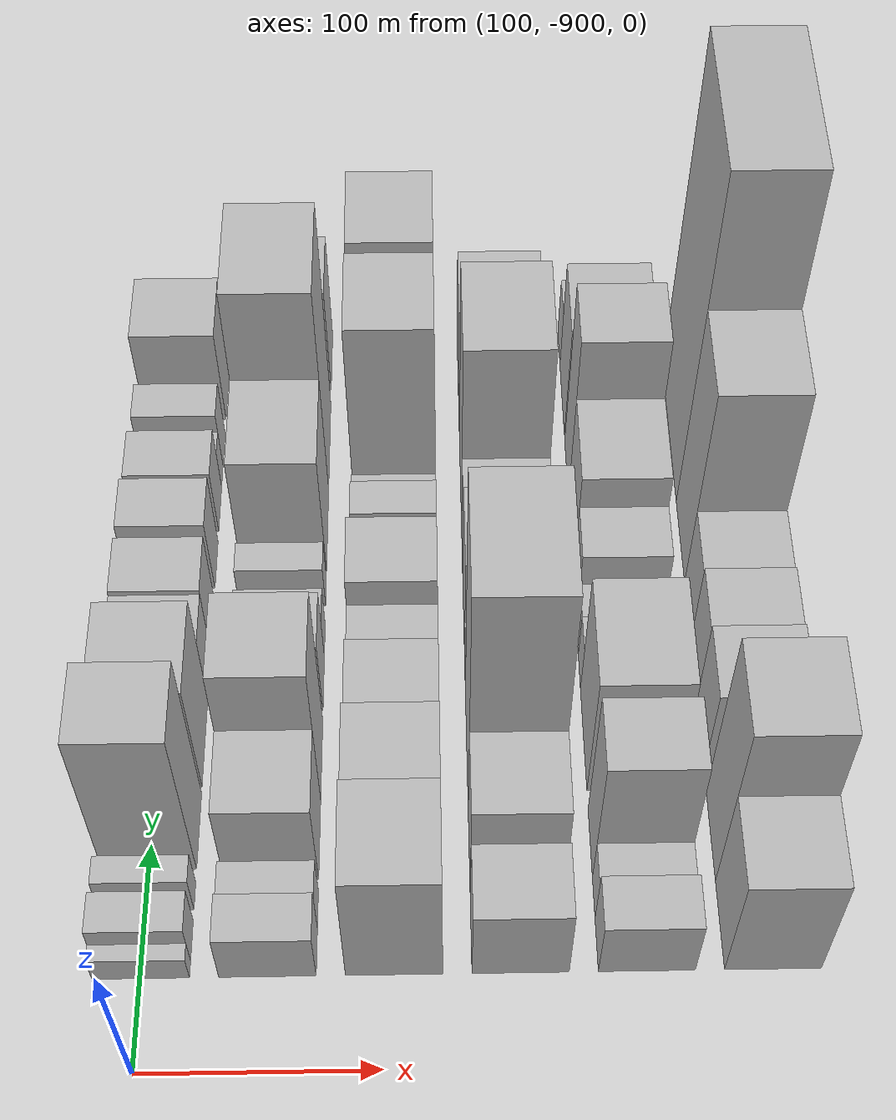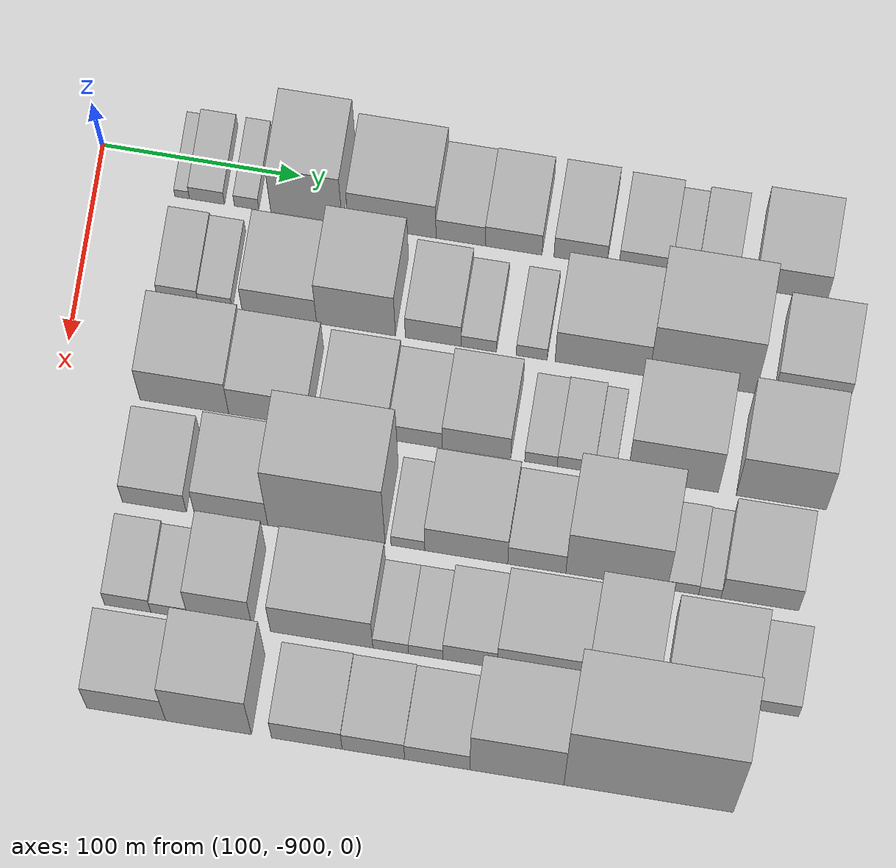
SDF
<sdf version="1.6">
 <world name="default">
  <model name="building_1">
   <static>1</static>
   <pose>100.0000 -856.3155 0 0.000000 0.000000 0.000000</pose>
   <link name="link">
    <pose>0 0 9.00 0 0 0</pose>
    <collision name="collision"><geometry><box><size>40.0000 7.3690 18.0000</size></box></geometry></collision>
    <visual name="visual">
     <cast_shadows>0</cast_shadows>
     <geometry><box><size>40.0000 7.3690 18.0000</size></box></geometry>
     <material>
      <script>
       <uri>model://HANNAS_wall/materials/scripts</uri>
       <uri>model://HANNAS_wall/materials/textures</uri>
       <name>vrc/HANNAS_wall</name>
      </script>
     </material>
    </visual>
   </link>
  </model>
  <model name="building_2">
   <static>1</static>
   <pose>100.0000 -843.7832 0 0.000000 0.000000 0.000000</pose>
   <link name="link">
    <pose>0 0 15.00 0 0 0</pose>
    <collision name="collision"><geometry><box><size>40.0000 17.6955 30.0000</size></box></geometry></collision>
    <visual name="visual">
     <cast_shadows>0</cast_shadows>
     <geometry><box><size>40.0000 17.6955 30.0000</size></box></geometry>
     <material>
      <script>
       <uri>model://HANNAS_wall/materials/scripts</uri>
       <uri>model://HANNAS_wall/materials/textures</uri>
       <name>vrc/HANNAS_wall</name>
      </script>
     </material>
    </visual>
   </link>
  </model>
  <model name="building_3">
   <static>1</static>
   <pose>100.0000 -823.7744 0 0.000000 0.000000 0.000000</pose>
   <link name="link">
    <pose>0 0 13.50 0 0 0</pose>
    <collision name="collision"><geometry><box><size>40.0000 12.3221 27.0000</size></box></geometry></collision>
    <visual name="visual">
     <cast_shadows>0</cast_shadows>
     <geometry><box><size>40.0000 12.3221 27.0000</size></box></geometry>
     <material>
      <script>
       <uri>model://HANNAS_wall/materials/scripts</uri>
       <uri>model://HANNAS_wall/materials/textures</uri>
       <name>vrc/HANNAS_wall</name>
      </script>
     </material>
    </visual>
   </link>
  </model>
  <model name="building_4">
   <static>1</static>
   <pose>100.0000 -793.5515 0 0.000000 0.000000 0.000000</pose>
   <link name="link">
    <pose>0 0 55.50 0 0 0</pose>
    <collision name="collision"><geometry><box><size>40.0000 36.1238 111.0000</size></box></geometry></collision>
    <visual name="visual">
     <cast_shadows>0</cast_shadows>
     <geometry><box><size>40.0000 36.1238 111.0000</size></box></geometry>
     <material>
      <script>
       <uri>model://HANNAS_wall/materials/scripts</uri>
       <uri>model://HANNAS_wall/materials/textures</uri>
       <name>vrc/HANNAS_wall</name>
      </script>
     </material>
    </visual>
   </link>
  </model>
  <model name="building_5">
   <static>1</static>
   <pose>100.0000 -750.3410 0 0.000000 0.000000 0.000000</pose>
   <link name="link">
    <pose>0 0 40.50 0 0 0</pose>
    <collision name="collision"><geometry><box><size>40.0000 44.2971 81.0000</size></box></geometry></collision>
    <visual name="visual">
     <cast_shadows>0</cast_shadows>
     <geometry><box><size>40.0000 44.2971 81.0000</size></box></geometry>
     <material>
      <script>
       <uri>model://HANNAS_wall/materials/scripts</uri>
       <uri>model://HANNAS_wall/materials/textures</uri>
       <name>vrc/HANNAS_wall</name>
      </script>
     </material>
    </visual>
   </link>
  </model>
  <model name="building_6">
   <static>1</static>
   <pose>100.0000 -715.8138 0 0.000000 0.000000 0.000000</pose>
   <link name="link">
    <pose>0 0 24.00 0 0 0</pose>
    <collision name="collision"><geometry><box><size>40.0000 24.7575 48.0000</size></box></geometry></collision>
    <visual name="visual">
     <cast_shadows>0</cast_shadows>
     <geometry><box><size>40.0000 24.7575 48.0000</size></box></geometry>
     <material>
      <script>
       <uri>model://HANNAS_wall/materials/scripts</uri>
       <uri>model://HANNAS_wall/materials/textures</uri>
       <name>vrc/HANNAS_wall</name>
      </script>
     </material>
    </visual>
   </link>
  </model>
  <model name="building_7">
   <static>1</static>
   <pose>100.0000 -689.0976 0 0.000000 0.000000 0.000000</pose>
   <link name="link">
    <pose>0 0 25.50 0 0 0</pose>
    <collision name="collision"><geometry><box><size>40.0000 28.6749 51.0000</size></box></geometry></collision>
    <visual name="visual">
     <cast_shadows>0</cast_shadows>
     <geometry><box><size>40.0000 28.6749 51.0000</size></box></geometry>
     <material>
      <script>
       <uri>model://HANNAS_wall/materials/scripts</uri>
       <uri>model://HANNAS_wall/materials/textures</uri>
       <name>vrc/HANNAS_wall</name>
      </script>
     </material>
    </visual>
   </link>
  </model>
  <model name="building_8">
   <static>1</static>
   <pose>100.0000 -655.4162 0 0.000000 0.000000 0.000000</pose>
   <link name="link">
    <pose>0 0 25.50 0 0 0</pose>
    <collision name="collision"><geometry><box><size>40.0000 26.6878 51.0000</size></box></geometry></collision>
    <visual name="visual">
     <cast_shadows>0</cast_shadows>
     <geometry><box><size>40.0000 26.6878 51.0000</size></box></geometry>
     <material>
      <script>
       <uri>model://HANNAS_wall/materials/scripts</uri>
       <uri>model://HANNAS_wall/materials/textures</uri>
       <name>vrc/HANNAS_wall</name>
      </script>
     </material>
    </visual>
   </link>
  </model>
  <model name="building_9">
   <static>1</static>
   <pose>100.0000 -622.9957 0 0.000000 0.000000 0.000000</pose>
   <link name="link">
    <pose>0 0 22.50 0 0 0</pose>
    <collision name="collision"><geometry><box><size>40.0000 26.1534 45.0000</size></box></geometry></collision>
    <visual name="visual">
     <cast_shadows>0</cast_shadows>
     <geometry><box><size>40.0000 26.1534 45.0000</size></box></geometry>
     <material>
      <script>
       <uri>model://HANNAS_wall/materials/scripts</uri>
       <uri>model://HANNAS_wall/materials/textures</uri>
       <name>vrc/HANNAS_wall</name>
      </script>
     </material>
    </visual>
   </link>
  </model>
  <model name="building_10">
   <static>1</static>
   <pose>100.0000 -603.3954 0 0.000000 0.000000 0.000000</pose>
   <link name="link">
    <pose>0 0 13.50 0 0 0</pose>
    <collision name="collision"><geometry><box><size>40.0000 13.0470 27.0000</size></box></geometry></collision>
    <visual name="visual">
     <cast_shadows>0</cast_shadows>
     <geometry><box><size>40.0000 13.0470 27.0000</size></box></geometry>
     <material>
      <script>
       <uri>model://HANNAS_wall/materials/scripts</uri>
       <uri>model://HANNAS_wall/materials/textures</uri>
       <name>vrc/HANNAS_wall</name>
      </script>
     </material>
    </visual>
   </link>
  </model>
  <model name="building_11">
   <static>1</static>
   <pose>100.0000 -586.8713 0 0.000000 0.000000 0.000000</pose>
   <link name="link">
    <pose>0 0 19.50 0 0 0</pose>
    <collision name="collision"><geometry><box><size>40.0000 20.0013 39.0000</size></box></geometry></collision>
    <visual name="visual">
     <cast_shadows>0</cast_shadows>
     <geometry><box><size>40.0000 20.0013 39.0000</size></box></geometry>
     <material>
      <script>
       <uri>model://HANNAS_wall/materials/scripts</uri>
       <uri>model://HANNAS_wall/materials/textures</uri>
       <name>vrc/HANNAS_wall</name>
      </script>
     </material>
    </visual>
   </link>
  </model>
  <model name="building_12">
   <static>1</static>
   <pose>100.0000 -549.4796 0 0.000000 0.000000 0.000000</pose>
   <link name="link">
    <pose>0 0 31.50 0 0 0</pose>
    <collision name="collision"><geometry><box><size>40.0000 36.7822 63.0000</size></box></geometry></collision>
    <visual name="visual">
     <cast_shadows>0</cast_shadows>
     <geometry><box><size>40.0000 36.7822 63.0000</size></box></geometry>
     <material>
      <script>
       <uri>model://HANNAS_wall/materials/scripts</uri>
       <uri>model://HANNAS_wall/materials/textures</uri>
       <name>vrc/HANNAS_wall</name>
      </script>
     </material>
    </visual>
   </link>
  </model>
  <model name="building_53">
   <static>1</static>
   <pose>152.0000 -849.6962 0 0.000000 0.000000 0.000000</pose>
   <link name="link">
    <pose>0 0 18.00 0 0 0</pose>
    <collision name="collision"><geometry><box><size>40.0000 20.6076 36.0000</size></box></geometry></collision>
    <visual name="visual">
     <cast_shadows>0</cast_shadows>
     <geometry><box><size>40.0000 20.6076 36.0000</size></box></geometry>
     <material>
      <script>
       <uri>model://HANNAS_wall/materials/scripts</uri>
       <uri>model://HANNAS_wall/materials/textures</uri>
       <name>vrc/HANNAS_wall</name>
      </script>
     </material>
    </visual>
   </link>
  </model>
  <model name="building_54">
   <static>1</static>
   <pose>152.0000 -830.8529 0 0.000000 0.000000 0.000000</pose>
   <link name="link">
    <pose>0 0 15.00 0 0 0</pose>
    <collision name="collision"><geometry><box><size>40.0000 17.0790 30.0000</size></box></geometry></collision>
    <visual name="visual">
     <cast_shadows>0</cast_shadows>
     <geometry><box><size>40.0000 17.0790 30.0000</size></box></geometry>
     <material>
      <script>
       <uri>model://HANNAS_wall/materials/scripts</uri>
       <uri>model://HANNAS_wall/materials/textures</uri>
       <name>vrc/HANNAS_wall</name>
      </script>
     </material>
    </visual>
   </link>
  </model>
  <model name="building_55">
   <static>1</static>
   <pose>152.0000 -798.5670 0 0.000000 0.000000 0.000000</pose>
   <link name="link">
    <pose>0 0 31.50 0 0 0</pose>
    <collision name="collision"><geometry><box><size>40.0000 37.4928 63.0000</size></box></geometry></collision>
    <visual name="visual">
     <cast_shadows>0</cast_shadows>
     <geometry><box><size>40.0000 37.4928 63.0000</size></box></geometry>
     <material>
      <script>
       <uri>model://HANNAS_wall/materials/scripts</uri>
       <uri>model://HANNAS_wall/materials/textures</uri>
       <name>vrc/HANNAS_wall</name>
      </script>
     </material>
    </visual>
   </link>
  </model>
  <model name="building_56">
   <static>1</static>
   <pose>152.0000 -759.9912 0 0.000000 0.000000 0.000000</pose>
   <link name="link">
    <pose>0 0 52.50 0 0 0</pose>
    <collision name="collision"><geometry><box><size>40.0000 39.6589 105.0000</size></box></geometry></collision>
    <visual name="visual">
     <cast_shadows>0</cast_shadows>
     <geometry><box><size>40.0000 39.6589 105.0000</size></box></geometry>
     <material>
      <script>
       <uri>model://HANNAS_wall/materials/scripts</uri>
       <uri>model://HANNAS_wall/materials/textures</uri>
       <name>vrc/HANNAS_wall</name>
      </script>
     </material>
    </visual>
   </link>
  </model>
  <model name="building_57">
   <static>1</static>
   <pose>152.0000 -721.1767 0 0.000000 0.000000 0.000000</pose>
   <link name="link">
    <pose>0 0 27.00 0 0 0</pose>
    <collision name="collision"><geometry><box><size>40.0000 27.9700 54.0000</size></box></geometry></collision>
    <visual name="visual">
     <cast_shadows>0</cast_shadows>
     <geometry><box><size>40.0000 27.9700 54.0000</size></box></geometry>
     <material>
      <script>
       <uri>model://HANNAS_wall/materials/scripts</uri>
       <uri>model://HANNAS_wall/materials/textures</uri>
       <name>vrc/HANNAS_wall</name>
      </script>
     </material>
    </visual>
   </link>
  </model>
  <model name="building_58">
   <static>1</static>
   <pose>152.0000 -698.2684 0 0.000000 0.000000 0.000000</pose>
   <link name="link">
    <pose>0 0 15.00 0 0 0</pose>
    <collision name="collision"><geometry><box><size>40.0000 17.8467 30.0000</size></box></geometry></collision>
    <visual name="visual">
     <cast_shadows>0</cast_shadows>
     <geometry><box><size>40.0000 17.8467 30.0000</size></box></geometry>
     <material>
      <script>
       <uri>model://HANNAS_wall/materials/scripts</uri>
       <uri>model://HANNAS_wall/materials/textures</uri>
       <name>vrc/HANNAS_wall</name>
      </script>
     </material>
    </visual>
   </link>
  </model>
  <model name="building_59">
   <static>1</static>
   <pose>152.0000 -671.6032 0 0.000000 0.000000 0.000000</pose>
   <link name="link">
    <pose>0 0 15.00 0 0 0</pose>
    <collision name="collision"><geometry><box><size>40.0000 15.4836 30.0000</size></box></geometry></collision>
    <visual name="visual">
     <cast_shadows>0</cast_shadows>
     <geometry><box><size>40.0000 15.4836 30.0000</size></box></geometry>
     <material>
      <script>
       <uri>model://HANNAS_wall/materials/scripts</uri>
       <uri>model://HANNAS_wall/materials/textures</uri>
       <name>vrc/HANNAS_wall</name>
      </script>
     </material>
    </visual>
   </link>
  </model>
  <model name="building_60">
   <static>1</static>
   <pose>152.0000 -636.1807 0 0.000000 0.000000 0.000000</pose>
   <link name="link">
    <pose>0 0 42.00 0 0 0</pose>
    <collision name="collision"><geometry><box><size>40.0000 47.3613 84.0000</size></box></geometry></collision>
    <visual name="visual">
     <cast_shadows>0</cast_shadows>
     <geometry><box><size>40.0000 47.3613 84.0000</size></box></geometry>
     <material>
      <script>
       <uri>model://HANNAS_wall/materials/scripts</uri>
       <uri>model://HANNAS_wall/materials/textures</uri>
       <name>vrc/HANNAS_wall</name>
      </script>
     </material>
    </visual>
   </link>
  </model>
  <model name="building_61">
   <static>1</static>
   <pose>152.0000 -585.7298 0 0.000000 0.000000 0.000000</pose>
   <link name="link">
    <pose>0 0 70.50 0 0 0</pose>
    <collision name="collision"><geometry><box><size>40.0000 53.5406 141.0000</size></box></geometry></collision>
    <visual name="visual">
     <cast_shadows>0</cast_shadows>
     <geometry><box><size>40.0000 53.5406 141.0000</size></box></geometry>
     <material>
      <script>
       <uri>model://HANNAS_wall/materials/scripts</uri>
       <uri>model://HANNAS_wall/materials/textures</uri>
       <name>vrc/HANNAS_wall</name>
      </script>
     </material>
    </visual>
   </link>
  </model>
  <model name="building_62">
   <static>1</static>
   <pose>152.0000 -531.5741 0 0.000000 0.000000 0.000000</pose>
   <link name="link">
    <pose>0 0 36.00 0 0 0</pose>
    <collision name="collision"><geometry><box><size>40.0000 36.7707 72.0000</size></box></geometry></collision>
    <visual name="visual">
     <cast_shadows>0</cast_shadows>
     <geometry><box><size>40.0000 36.7707 72.0000</size></box></geometry>
     <material>
      <script>
       <uri>model://HANNAS_wall/materials/scripts</uri>
       <uri>model://HANNAS_wall/materials/textures</uri>
       <name>vrc/HANNAS_wall</name>
      </script>
     </material>
    </visual>
   </link>
  </model>
  <model name="building_103">
   <static>1</static>
   <pose>204.0000 -837.6647 0 0.000000 0.000000 0.000000</pose>
   <link name="link">
    <pose>0 0 43.50 0 0 0</pose>
    <collision name="collision"><geometry><box><size>40.0000 44.6706 87.0000</size></box></geometry></collision>
    <visual name="visual">
     <cast_shadows>0</cast_shadows>
     <geometry><box><size>40.0000 44.6706 87.0000</size></box></geometry>
     <material>
      <script>
       <uri>model://HANNAS_wall/materials/scripts</uri>
       <uri>model://HANNAS_wall/materials/textures</uri>
       <name>vrc/HANNAS_wall</name>
      </script>
     </material>
    </visual>
   </link>
  </model>
  <model name="building_104">
   <static>1</static>
   <pose>204.0000 -794.8268 0 0.000000 0.000000 0.000000</pose>
   <link name="link">
    <pose>0 0 37.50 0 0 0</pose>
    <collision name="collision"><geometry><box><size>40.0000 41.0053 75.0000</size></box></geometry></collision>
    <visual name="visual">
     <cast_shadows>0</cast_shadows>
     <geometry><box><size>40.0000 41.0053 75.0000</size></box></geometry>
     <material>
      <script>
       <uri>model://HANNAS_wall/materials/scripts</uri>
       <uri>model://HANNAS_wall/materials/textures</uri>
       <name>vrc/HANNAS_wall</name>
      </script>
     </material>
    </visual>
   </link>
  </model>
  <model name="building_105">
   <static>1</static>
   <pose>204.0000 -752.1657 0 0.000000 0.000000 0.000000</pose>
   <link name="link">
    <pose>0 0 30.00 0 0 0</pose>
    <collision name="collision"><geometry><box><size>40.0000 34.3169 60.0000</size></box></geometry></collision>
    <visual name="visual">
     <cast_shadows>0</cast_shadows>
     <geometry><box><size>40.0000 34.3169 60.0000</size></box></geometry>
     <material>
      <script>
       <uri>model://HANNAS_wall/materials/scripts</uri>
       <uri>model://HANNAS_wall/materials/textures</uri>
       <name>vrc/HANNAS_wall</name>
      </script>
     </material>
    </visual>
   </link>
  </model>
  <model name="building_106">
   <static>1</static>
   <pose>204.0000 -721.5376 0 0.000000 0.000000 0.000000</pose>
   <link name="link">
    <pose>0 0 22.50 0 0 0</pose>
    <collision name="collision"><geometry><box><size>40.0000 26.9392 45.0000</size></box></geometry></collision>
    <visual name="visual">
     <cast_shadows>0</cast_shadows>
     <geometry><box><size>40.0000 26.9392 45.0000</size></box></geometry>
     <material>
      <script>
       <uri>model://HANNAS_wall/materials/scripts</uri>
       <uri>model://HANNAS_wall/materials/textures</uri>
       <name>vrc/HANNAS_wall</name>
      </script>
     </material>
    </visual>
   </link>
  </model>
  <model name="building_107">
   <static>1</static>
   <pose>204.0000 -690.9163 0 0.000000 0.000000 0.000000</pose>
   <link name="link">
    <pose>0 0 31.50 0 0 0</pose>
    <collision name="collision"><geometry><box><size>40.0000 34.3036 63.0000</size></box></geometry></collision>
    <visual name="visual">
     <cast_shadows>0</cast_shadows>
     <geometry><box><size>40.0000 34.3036 63.0000</size></box></geometry>
     <material>
      <script>
       <uri>model://HANNAS_wall/materials/scripts</uri>
       <uri>model://HANNAS_wall/materials/textures</uri>
       <name>vrc/HANNAS_wall</name>
      </script>
     </material>
    </visual>
   </link>
  </model>
  <model name="building_108">
   <static>1</static>
   <pose>204.0000 -658.6132 0 0.000000 0.000000 0.000000</pose>
   <link name="link">
    <pose>0 0 15.00 0 0 0</pose>
    <collision name="collision"><geometry><box><size>40.0000 16.3026 30.0000</size></box></geometry></collision>
    <visual name="visual">
     <cast_shadows>0</cast_shadows>
     <geometry><box><size>40.0000 16.3026 30.0000</size></box></geometry>
     <material>
      <script>
       <uri>model://HANNAS_wall/materials/scripts</uri>
       <uri>model://HANNAS_wall/materials/textures</uri>
       <name>vrc/HANNAS_wall</name>
      </script>
     </material>
    </visual>
   </link>
  </model>
  <model name="building_109">
   <static>1</static>
   <pose>204.0000 -641.1281 0 0.000000 0.000000 0.000000</pose>
   <link name="link">
    <pose>0 0 16.50 0 0 0</pose>
    <collision name="collision"><geometry><box><size>40.0000 18.6675 33.0000</size></box></geometry></collision>
    <visual name="visual">
     <cast_shadows>0</cast_shadows>
     <geometry><box><size>40.0000 18.6675 33.0000</size></box></geometry>
     <material>
      <script>
       <uri>model://HANNAS_wall/materials/scripts</uri>
       <uri>model://HANNAS_wall/materials/textures</uri>
       <name>vrc/HANNAS_wall</name>
      </script>
     </material>
    </visual>
   </link>
  </model>
  <model name="building_110">
   <static>1</static>
   <pose>204.0000 -626.5386 0 0.000000 0.000000 0.000000</pose>
   <link name="link">
    <pose>0 0 12.00 0 0 0</pose>
    <collision name="collision"><geometry><box><size>40.0000 10.5116 24.0000</size></box></geometry></collision>
    <visual name="visual">
     <cast_shadows>0</cast_shadows>
     <geometry><box><size>40.0000 10.5116 24.0000</size></box></geometry>
     <material>
      <script>
       <uri>model://HANNAS_wall/materials/scripts</uri>
       <uri>model://HANNAS_wall/materials/textures</uri>
       <name>vrc/HANNAS_wall</name>
      </script>
     </material>
    </visual>
   </link>
  </model>
  <model name="building_111">
   <static>1</static>
   <pose>204.0000 -592.5003 0 0.000000 0.000000 0.000000</pose>
   <link name="link">
    <pose>0 0 60.00 0 0 0</pose>
    <collision name="collision"><geometry><box><size>40.0000 45.5648 120.0000</size></box></geometry></collision>
    <visual name="visual">
     <cast_shadows>0</cast_shadows>
     <geometry><box><size>40.0000 45.5648 120.0000</size></box></geometry>
     <material>
      <script>
       <uri>model://HANNAS_wall/materials/scripts</uri>
       <uri>model://HANNAS_wall/materials/textures</uri>
       <name>vrc/HANNAS_wall</name>
      </script>
     </material>
    </visual>
   </link>
  </model>
  <model name="building_112">
   <static>1</static>
   <pose>204.0000 -538.1352 0 0.000000 0.000000 0.000000</pose>
   <link name="link">
    <pose>0 0 58.50 0 0 0</pose>
    <collision name="collision"><geometry><box><size>40.0000 45.1655 117.0000</size></box></geometry></collision>
    <visual name="visual">
     <cast_shadows>0</cast_shadows>
     <geometry><box><size>40.0000 45.1655 117.0000</size></box></geometry>
     <material>
      <script>
       <uri>model://HANNAS_wall/materials/scripts</uri>
       <uri>model://HANNAS_wall/materials/textures</uri>
       <name>vrc/HANNAS_wall</name>
      </script>
     </material>
    </visual>
   </link>
  </model>
  <model name="building_149">
   <static>1</static>
   <pose>256.0000 -843.9331 0 0.000000 0.000000 0.000000</pose>
   <link name="link">
    <pose>0 0 27.00 0 0 0</pose>
    <collision name="collision"><geometry><box><size>40.0000 32.1338 54.0000</size></box></geometry></collision>
    <visual name="visual">
     <cast_shadows>0</cast_shadows>
     <geometry><box><size>40.0000 32.1338 54.0000</size></box></geometry>
     <material>
      <script>
       <uri>model://HANNAS_wall/materials/scripts</uri>
       <uri>model://HANNAS_wall/materials/textures</uri>
       <name>vrc/HANNAS_wall</name>
      </script>
     </material>
    </visual>
   </link>
  </model>
  <model name="building_150">
   <static>1</static>
   <pose>256.0000 -805.4690 0 0.000000 0.000000 0.000000</pose>
   <link name="link">
    <pose>0 0 36.00 0 0 0</pose>
    <collision name="collision"><geometry><box><size>40.0000 36.7944 72.0000</size></box></geometry></collision>
    <visual name="visual">
     <cast_shadows>0</cast_shadows>
     <geometry><box><size>40.0000 36.7944 72.0000</size></box></geometry>
     <material>
      <script>
       <uri>model://HANNAS_wall/materials/scripts</uri>
       <uri>model://HANNAS_wall/materials/textures</uri>
       <name>vrc/HANNAS_wall</name>
      </script>
     </material>
    </visual>
   </link>
  </model>
  <model name="building_151">
   <static>1</static>
   <pose>256.0000 -757.6709 0 0.000000 0.000000 0.000000</pose>
   <link name="link">
    <pose>0 0 85.50 0 0 0</pose>
    <collision name="collision"><geometry><box><size>40.0000 58.8020 171.0000</size></box></geometry></collision>
    <visual name="visual">
     <cast_shadows>0</cast_shadows>
     <geometry><box><size>40.0000 58.8020 171.0000</size></box></geometry>
     <material>
      <script>
       <uri>model://HANNAS_wall/materials/scripts</uri>
       <uri>model://HANNAS_wall/materials/textures</uri>
       <name>vrc/HANNAS_wall</name>
      </script>
     </material>
    </visual>
   </link>
  </model>
  <model name="building_152">
   <static>1</static>
   <pose>256.0000 -716.8175 0 0.000000 0.000000 0.000000</pose>
   <link name="link">
    <pose>0 0 15.00 0 0 0</pose>
    <collision name="collision"><geometry><box><size>40.0000 16.9048 30.0000</size></box></geometry></collision>
    <visual name="visual">
     <cast_shadows>0</cast_shadows>
     <geometry><box><size>40.0000 16.9048 30.0000</size></box></geometry>
     <material>
      <script>
       <uri>model://HANNAS_wall/materials/scripts</uri>
       <uri>model://HANNAS_wall/materials/textures</uri>
       <name>vrc/HANNAS_wall</name>
      </script>
     </material>
    </visual>
   </link>
  </model>
  <model name="building_153">
   <static>1</static>
   <pose>256.0000 -687.6121 0 0.000000 0.000000 0.000000</pose>
   <link name="link">
    <pose>0 0 37.50 0 0 0</pose>
    <collision name="collision"><geometry><box><size>40.0000 41.5059 75.0000</size></box></geometry></collision>
    <visual name="visual">
     <cast_shadows>0</cast_shadows>
     <geometry><box><size>40.0000 41.5059 75.0000</size></box></geometry>
     <material>
      <script>
       <uri>model://HANNAS_wall/materials/scripts</uri>
       <uri>model://HANNAS_wall/materials/textures</uri>
       <name>vrc/HANNAS_wall</name>
      </script>
     </material>
    </visual>
   </link>
  </model>
  <model name="building_154">
   <static>1</static>
   <pose>256.0000 -652.3341 0 0.000000 0.000000 0.000000</pose>
   <link name="link">
    <pose>0 0 28.50 0 0 0</pose>
    <collision name="collision"><geometry><box><size>40.0000 29.0501 57.0000</size></box></geometry></collision>
    <visual name="visual">
     <cast_shadows>0</cast_shadows>
     <geometry><box><size>40.0000 29.0501 57.0000</size></box></geometry>
     <material>
      <script>
       <uri>model://HANNAS_wall/materials/scripts</uri>
       <uri>model://HANNAS_wall/materials/textures</uri>
       <name>vrc/HANNAS_wall</name>
      </script>
     </material>
    </visual>
   </link>
  </model>
  <model name="building_155">
   <static>1</static>
   <pose>256.0000 -612.4388 0 0.000000 0.000000 0.000000</pose>
   <link name="link">
    <pose>0 0 66.00 0 0 0</pose>
    <collision name="collision"><geometry><box><size>40.0000 50.7405 132.0000</size></box></geometry></collision>
    <visual name="visual">
     <cast_shadows>0</cast_shadows>
     <geometry><box><size>40.0000 50.7405 132.0000</size></box></geometry>
     <material>
      <script>
       <uri>model://HANNAS_wall/materials/scripts</uri>
       <uri>model://HANNAS_wall/materials/textures</uri>
       <name>vrc/HANNAS_wall</name>
      </script>
     </material>
    </visual>
   </link>
  </model>
  <model name="building_156">
   <static>1</static>
   <pose>256.0000 -579.2608 0 0.000000 0.000000 0.000000</pose>
   <link name="link">
    <pose>0 0 15.00 0 0 0</pose>
    <collision name="collision"><geometry><box><size>40.0000 15.6154 30.0000</size></box></geometry></collision>
    <visual name="visual">
     <cast_shadows>0</cast_shadows>
     <geometry><box><size>40.0000 15.6154 30.0000</size></box></geometry>
     <material>
      <script>
       <uri>model://HANNAS_wall/materials/scripts</uri>
       <uri>model://HANNAS_wall/materials/textures</uri>
       <name>vrc/HANNAS_wall</name>
      </script>
     </material>
    </visual>
   </link>
  </model>
  <model name="building_157">
   <static>1</static>
   <pose>256.0000 -565.8545 0 0.000000 0.000000 0.000000</pose>
   <link name="link">
    <pose>0 0 13.50 0 0 0</pose>
    <collision name="collision"><geometry><box><size>40.0000 11.1972 27.0000</size></box></geometry></collision>
    <visual name="visual">
     <cast_shadows>0</cast_shadows>
     <geometry><box><size>40.0000 11.1972 27.0000</size></box></geometry>
     <material>
      <script>
       <uri>model://HANNAS_wall/materials/scripts</uri>
       <uri>model://HANNAS_wall/materials/textures</uri>
       <name>vrc/HANNAS_wall</name>
      </script>
     </material>
    </visual>
   </link>
  </model>
  <model name="building_158">
   <static>1</static>
   <pose>256.0000 -540.8018 0 0.000000 0.000000 0.000000</pose>
   <link name="link">
    <pose>0 0 34.50 0 0 0</pose>
    <collision name="collision"><geometry><box><size>40.0000 38.9083 69.0000</size></box></geometry></collision>
    <visual name="visual">
     <cast_shadows>0</cast_shadows>
     <geometry><box><size>40.0000 38.9083 69.0000</size></box></geometry>
     <material>
      <script>
       <uri>model://HANNAS_wall/materials/scripts</uri>
       <uri>model://HANNAS_wall/materials/textures</uri>
       <name>vrc/HANNAS_wall</name>
      </script>
     </material>
    </visual>
   </link>
  </model>
  <model name="building_197">
   <static>1</static>
   <pose>308.0000 -848.4196 0 0.000000 0.000000 0.000000</pose>
   <link name="link">
    <pose>0 0 21.00 0 0 0</pose>
    <collision name="collision"><geometry><box><size>40.0000 23.1608 42.0000</size></box></geometry></collision>
    <visual name="visual">
     <cast_shadows>0</cast_shadows>
     <geometry><box><size>40.0000 23.1608 42.0000</size></box></geometry>
     <material>
      <script>
       <uri>model://HANNAS_wall/materials/scripts</uri>
       <uri>model://HANNAS_wall/materials/textures</uri>
       <name>vrc/HANNAS_wall</name>
      </script>
     </material>
    </visual>
   </link>
  </model>
  <model name="building_198">
   <static>1</static>
   <pose>308.0000 -827.5066 0 0.000000 0.000000 0.000000</pose>
   <link name="link">
    <pose>0 0 16.50 0 0 0</pose>
    <collision name="collision"><geometry><box><size>40.0000 18.6651 33.0000</size></box></geometry></collision>
    <visual name="visual">
     <cast_shadows>0</cast_shadows>
     <geometry><box><size>40.0000 18.6651 33.0000</size></box></geometry>
     <material>
      <script>
       <uri>model://HANNAS_wall/materials/scripts</uri>
       <uri>model://HANNAS_wall/materials/textures</uri>
       <name>vrc/HANNAS_wall</name>
      </script>
     </material>
    </visual>
   </link>
  </model>
  <model name="building_199">
   <static>1</static>
   <pose>308.0000 -802.1057 0 0.000000 0.000000 0.000000</pose>
   <link name="link">
    <pose>0 0 48.00 0 0 0</pose>
    <collision name="collision"><geometry><box><size>40.0000 32.1367 96.0000</size></box></geometry></collision>
    <visual name="visual">
     <cast_shadows>0</cast_shadows>
     <geometry><box><size>40.0000 32.1367 96.0000</size></box></geometry>
     <material>
      <script>
       <uri>model://HANNAS_wall/materials/scripts</uri>
       <uri>model://HANNAS_wall/materials/textures</uri>
       <name>vrc/HANNAS_wall</name>
      </script>
     </material>
    </visual>
   </link>
  </model>
  <model name="building_200">
   <static>1</static>
   <pose>308.0000 -751.4334 0 0.000000 0.000000 0.000000</pose>
   <link name="link">
    <pose>0 0 45.00 0 0 0</pose>
    <collision name="collision"><geometry><box><size>40.0000 51.2079 90.0000</size></box></geometry></collision>
    <visual name="visual">
     <cast_shadows>0</cast_shadows>
     <geometry><box><size>40.0000 51.2079 90.0000</size></box></geometry>
     <material>
      <script>
       <uri>model://HANNAS_wall/materials/scripts</uri>
       <uri>model://HANNAS_wall/materials/textures</uri>
       <name>vrc/HANNAS_wall</name>
      </script>
     </material>
    </visual>
   </link>
  </model>
  <model name="building_201">
   <static>1</static>
   <pose>308.0000 -716.9407 0 0.000000 0.000000 0.000000</pose>
   <link name="link">
    <pose>0 0 16.50 0 0 0</pose>
    <collision name="collision"><geometry><box><size>40.0000 17.7774 33.0000</size></box></geometry></collision>
    <visual name="visual">
     <cast_shadows>0</cast_shadows>
     <geometry><box><size>40.0000 17.7774 33.0000</size></box></geometry>
     <material>
      <script>
       <uri>model://HANNAS_wall/materials/scripts</uri>
       <uri>model://HANNAS_wall/materials/textures</uri>
       <name>vrc/HANNAS_wall</name>
      </script>
     </material>
    </visual>
   </link>
  </model>
  <model name="building_202">
   <static>1</static>
   <pose>308.0000 -699.4644 0 0.000000 0.000000 0.000000</pose>
   <link name="link">
    <pose>0 0 16.50 0 0 0</pose>
    <collision name="collision"><geometry><box><size>40.0000 17.1751 33.0000</size></box></geometry></collision>
    <visual name="visual">
     <cast_shadows>0</cast_shadows>
     <geometry><box><size>40.0000 17.1751 33.0000</size></box></geometry>
     <material>
      <script>
       <uri>model://HANNAS_wall/materials/scripts</uri>
       <uri>model://HANNAS_wall/materials/textures</uri>
       <name>vrc/HANNAS_wall</name>
      </script>
     </material>
    </visual>
   </link>
  </model>
  <model name="building_203">
   <static>1</static>
   <pose>308.0000 -677.2844 0 0.000000 0.000000 0.000000</pose>
   <link name="link">
    <pose>0 0 27.00 0 0 0</pose>
    <collision name="collision"><geometry><box><size>40.0000 27.1850 54.0000</size></box></geometry></collision>
    <visual name="visual">
     <cast_shadows>0</cast_shadows>
     <geometry><box><size>40.0000 27.1850 54.0000</size></box></geometry>
     <material>
      <script>
       <uri>model://HANNAS_wall/materials/scripts</uri>
       <uri>model://HANNAS_wall/materials/textures</uri>
       <name>vrc/HANNAS_wall</name>
      </script>
     </material>
    </visual>
   </link>
  </model>
  <model name="building_204">
   <static>1</static>
   <pose>308.0000 -641.2140 0 0.000000 0.000000 0.000000</pose>
   <link name="link">
    <pose>0 0 37.50 0 0 0</pose>
    <collision name="collision"><geometry><box><size>40.0000 44.9557 75.0000</size></box></geometry></collision>
    <visual name="visual">
     <cast_shadows>0</cast_shadows>
     <geometry><box><size>40.0000 44.9557 75.0000</size></box></geometry>
     <material>
      <script>
       <uri>model://HANNAS_wall/materials/scripts</uri>
       <uri>model://HANNAS_wall/materials/textures</uri>
       <name>vrc/HANNAS_wall</name>
      </script>
     </material>
    </visual>
   </link>
  </model>
  <model name="building_205">
   <static>1</static>
   <pose>308.0000 -601.5036 0 0.000000 0.000000 0.000000</pose>
   <link name="link">
    <pose>0 0 57.00 0 0 0</pose>
    <collision name="collision"><geometry><box><size>40.0000 34.4652 114.0000</size></box></geometry></collision>
    <visual name="visual">
     <cast_shadows>0</cast_shadows>
     <geometry><box><size>40.0000 34.4652 114.0000</size></box></geometry>
     <material>
      <script>
       <uri>model://HANNAS_wall/materials/scripts</uri>
       <uri>model://HANNAS_wall/materials/textures</uri>
       <name>vrc/HANNAS_wall</name>
      </script>
     </material>
    </visual>
   </link>
  </model>
  <model name="building_206">
   <static>1</static>
   <pose>308.0000 -558.0240 0 0.000000 0.000000 0.000000</pose>
   <link name="link">
    <pose>0 0 37.50 0 0 0</pose>
    <collision name="collision"><geometry><box><size>40.0000 44.4939 75.0000</size></box></geometry></collision>
    <visual name="visual">
     <cast_shadows>0</cast_shadows>
     <geometry><box><size>40.0000 44.4939 75.0000</size></box></geometry>
     <material>
      <script>
       <uri>model://HANNAS_wall/materials/scripts</uri>
       <uri>model://HANNAS_wall/materials/textures</uri>
       <name>vrc/HANNAS_wall</name>
      </script>
     </material>
    </visual>
   </link>
  </model>
  <model name="building_207">
   <static>1</static>
   <pose>308.0000 -524.5984 0 0.000000 0.000000 0.000000</pose>
   <link name="link">
    <pose>0 0 19.50 0 0 0</pose>
    <collision name="collision"><geometry><box><size>40.0000 22.3574 39.0000</size></box></geometry></collision>
    <visual name="visual">
     <cast_shadows>0</cast_shadows>
     <geometry><box><size>40.0000 22.3574 39.0000</size></box></geometry>
     <material>
      <script>
       <uri>model://HANNAS_wall/materials/scripts</uri>
       <uri>model://HANNAS_wall/materials/textures</uri>
       <name>vrc/HANNAS_wall</name>
      </script>
     </material>
    </visual>
   </link>
  </model>
  <model name="building_250">
   <static>1</static>
   <pose>360.0000 -840.3085 0 0.000000 0.000000 0.000000</pose>
   <link name="link">
    <pose>0 0 39.00 0 0 0</pose>
    <collision name="collision"><geometry><box><size>40.0000 39.3830 78.0000</size></box></geometry></collision>
    <visual name="visual">
     <cast_shadows>0</cast_shadows>
     <geometry><box><size>40.0000 39.3830 78.0000</size></box></geometry>
     <material>
      <script>
       <uri>model://HANNAS_wall/materials/scripts</uri>
       <uri>model://HANNAS_wall/materials/textures</uri>
       <name>vrc/HANNAS_wall</name>
      </script>
     </material>
    </visual>
   </link>
  </model>
  <model name="building_251">
   <static>1</static>
   <pose>360.0000 -799.2116 0 0.000000 0.000000 0.000000</pose>
   <link name="link">
    <pose>0 0 63.00 0 0 0</pose>
    <collision name="collision"><geometry><box><size>40.0000 42.8108 126.0000</size></box></geometry></collision>
    <visual name="visual">
     <cast_shadows>0</cast_shadows>
     <geometry><box><size>40.0000 42.8108 126.0000</size></box></geometry>
     <material>
      <script>
       <uri>model://HANNAS_wall/materials/scripts</uri>
       <uri>model://HANNAS_wall/materials/textures</uri>
       <name>vrc/HANNAS_wall</name>
      </script>
     </material>
    </visual>
   </link>
  </model>
  <model name="building_252">
   <static>1</static>
   <pose>360.0000 -750.1811 0 0.000000 0.000000 0.000000</pose>
   <link name="link">
    <pose>0 0 31.50 0 0 0</pose>
    <collision name="collision"><geometry><box><size>40.0000 35.2503 63.0000</size></box></geometry></collision>
    <visual name="visual">
     <cast_shadows>0</cast_shadows>
     <geometry><box><size>40.0000 35.2503 63.0000</size></box></geometry>
     <material>
      <script>
       <uri>model://HANNAS_wall/materials/scripts</uri>
       <uri>model://HANNAS_wall/materials/textures</uri>
       <name>vrc/HANNAS_wall</name>
      </script>
     </material>
    </visual>
   </link>
  </model>
  <model name="building_253">
   <static>1</static>
   <pose>360.0000 -716.9947 0 0.000000 0.000000 0.000000</pose>
   <link name="link">
    <pose>0 0 30.00 0 0 0</pose>
    <collision name="collision"><geometry><box><size>40.0000 31.1225 60.0000</size></box></geometry></collision>
    <visual name="visual">
     <cast_shadows>0</cast_shadows>
     <geometry><box><size>40.0000 31.1225 60.0000</size></box></geometry>
     <material>
      <script>
       <uri>model://HANNAS_wall/materials/scripts</uri>
       <uri>model://HANNAS_wall/materials/textures</uri>
       <name>vrc/HANNAS_wall</name>
      </script>
     </material>
    </visual>
   </link>
  </model>
  <model name="building_254">
   <static>1</static>
   <pose>360.0000 -685.1275 0 0.000000 0.000000 0.000000</pose>
   <link name="link">
    <pose>0 0 28.50 0 0 0</pose>
    <collision name="collision"><geometry><box><size>40.0000 32.6119 57.0000</size></box></geometry></collision>
    <visual name="visual">
     <cast_shadows>0</cast_shadows>
     <geometry><box><size>40.0000 32.6119 57.0000</size></box></geometry>
     <material>
      <script>
       <uri>model://HANNAS_wall/materials/scripts</uri>
       <uri>model://HANNAS_wall/materials/textures</uri>
       <name>vrc/HANNAS_wall</name>
      </script>
     </material>
    </visual>
   </link>
  </model>
  <model name="building_255">
   <static>1</static>
   <pose>360.0000 -645.4774 0 0.000000 0.000000 0.000000</pose>
   <link name="link">
    <pose>0 0 69.00 0 0 0</pose>
    <collision name="collision"><geometry><box><size>40.0000 46.6882 138.0000</size></box></geometry></collision>
    <visual name="visual">
     <cast_shadows>0</cast_shadows>
     <geometry><box><size>40.0000 46.6882 138.0000</size></box></geometry>
     <material>
      <script>
       <uri>model://HANNAS_wall/materials/scripts</uri>
       <uri>model://HANNAS_wall/materials/textures</uri>
       <name>vrc/HANNAS_wall</name>
      </script>
     </material>
    </visual>
   </link>
  </model>
  <model name="building_256">
   <static>1</static>
   <pose>360.0000 -579.9870 0 0.000000 0.000000 0.000000</pose>
   <link name="link">
    <pose>0 0 109.50 0 0 0</pose>
    <collision name="collision"><geometry><box><size>40.0000 84.2928 219.0000</size></box></geometry></collision>
    <visual name="visual">
     <cast_shadows>0</cast_shadows>
     <geometry><box><size>40.0000 84.2928 219.0000</size></box></geometry>
     <material>
      <script>
       <uri>model://HANNAS_wall/materials/scripts</uri>
       <uri>model://HANNAS_wall/materials/textures</uri>
       <name>vrc/HANNAS_wall</name>
      </script>
     </material>
    </visual>
   </link>
  </model>
 </world>
</sdf>
